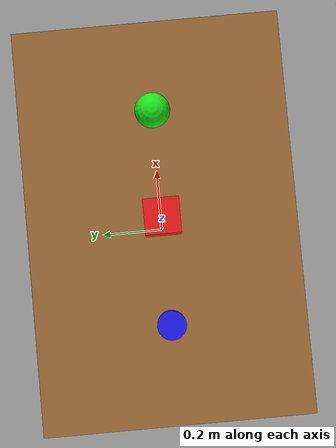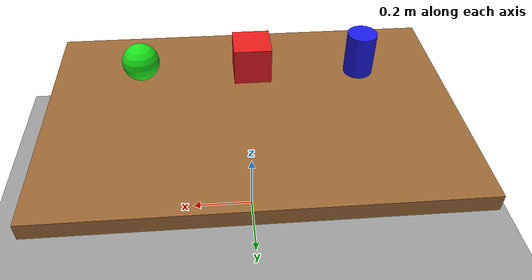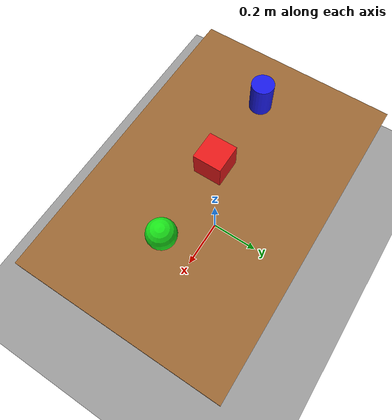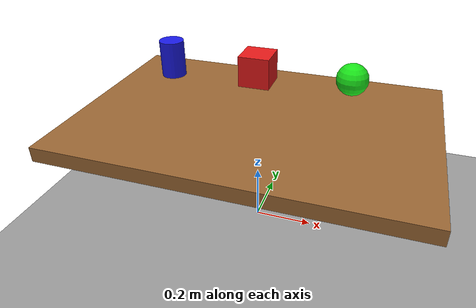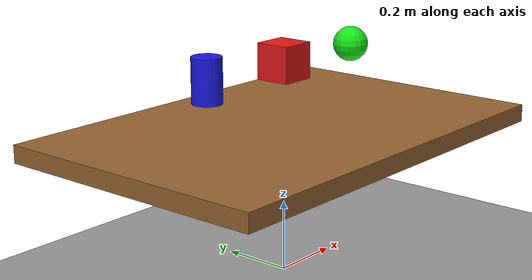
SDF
<?xml version="1.0" ?>
<sdf version="1.10">
  <world name="world_with_objects">

    <!-- Physics Configuration -->
    <physics type="ode">
      <max_step_size>0.001</max_step_size>
      <real_time_factor>1.0</real_time_factor>
    </physics>

    <!-- Lighting -->
    <light type="directional" name="sun">
      <cast_shadows>true</cast_shadows>
      <pose>0 0 10 0 0 0</pose>
      <diffuse>0.8 0.8 0.8 1</diffuse>
      <specular>0.2 0.2 0.2 1</specular>
      <direction>-0.5 0.1 -0.9</direction>
    </light>

    <!-- Ground Plane -->
    <model name="ground_plane">
      <static>true</static>
      <link name="link">
        <collision name="collision">
          <geometry>
            <plane>
              <normal>0 0 1</normal>
              <size>100 100</size>
            </plane>
          </geometry>
        </collision>
        <visual name="visual">
          <geometry>
            <plane>
              <normal>0 0 1</normal>
              <size>100 100</size>
            </plane>
          </geometry>
          <material>
            <ambient>0.6 0.6 0.6 1</ambient>
            <diffuse>0.6 0.6 0.6 1</diffuse>
          </material>
        </visual>
      </link>
    </model>

    <!-- Table: A flat surface for placing objects -->
    <model name="table">
      <static>true</static>
      <pose>0 0 0.4 0 0 0</pose>
      <link name="table_top">
        <collision name="collision">
          <geometry>
            <box>
              <size>1.2 0.8 0.05</size>
            </box>
          </geometry>
        </collision>
        <visual name="visual">
          <geometry>
            <box>
              <size>1.2 0.8 0.05</size>
            </box>
          </geometry>
          <material>
            <ambient>0.6 0.4 0.2 1</ambient>
            <diffuse>0.6 0.4 0.2 1</diffuse>
          </material>
        </visual>
      </link>
    </model>

    <!-- Red Box: Will fall due to gravity -->
    <model name="red_box">
      <pose>0 0 0.6 0 0 0</pose>
      <link name="link">
        <inertial>
          <mass>1.0</mass>
          <inertia>
            <ixx>0.00667</ixx>
            <iyy>0.00667</iyy>
            <izz>0.00667</izz>
          </inertia>
        </inertial>
        <collision name="collision">
          <geometry>
            <box>
              <size>0.1 0.1 0.1</size>
            </box>
          </geometry>
        </collision>
        <visual name="visual">
          <geometry>
            <box>
              <size>0.1 0.1 0.1</size>
            </box>
          </geometry>
          <material>
            <ambient>0.9 0.1 0.1 1</ambient>
            <diffuse>0.9 0.1 0.1 1</diffuse>
          </material>
        </visual>
      </link>
    </model>

    <!-- Green Sphere: Demonstrates spherical collision -->
    <model name="green_sphere">
      <pose>0.3 0 0.6 0 0 0</pose>
      <link name="link">
        <inertial>
          <mass>0.5</mass>
          <inertia>
            <ixx>0.001</ixx>
            <iyy>0.001</iyy>
            <izz>0.001</izz>
          </inertia>
        </inertial>
        <collision name="collision">
          <geometry>
            <sphere>
              <radius>0.05</radius>
            </sphere>
          </geometry>
        </collision>
        <visual name="visual">
          <geometry>
            <sphere>
              <radius>0.05</radius>
            </sphere>
          </geometry>
          <material>
            <ambient>0.1 0.9 0.1 1</ambient>
            <diffuse>0.1 0.9 0.1 1</diffuse>
          </material>
        </visual>
      </link>
    </model>

    <!-- Blue Cylinder: Demonstrates cylindrical collision -->
    <model name="blue_cylinder">
      <pose>-0.3 0 0.6 0 0 0</pose>
      <link name="link">
        <inertial>
          <mass>0.8</mass>
          <inertia>
            <ixx>0.002</ixx>
            <iyy>0.002</iyy>
            <izz>0.001</izz>
          </inertia>
        </inertial>
        <collision name="collision">
          <geometry>
            <cylinder>
              <radius>0.04</radius>
              <length>0.12</length>
            </cylinder>
          </geometry>
        </collision>
        <visual name="visual">
          <geometry>
            <cylinder>
              <radius>0.04</radius>
              <length>0.12</length>
            </cylinder>
          </geometry>
          <material>
            <ambient>0.1 0.1 0.9 1</ambient>
            <diffuse>0.1 0.1 0.9 1</diffuse>
          </material>
        </visual>
      </link>
    </model>

    <gravity>0 0 -9.81</gravity>

  </world>
</sdf>
